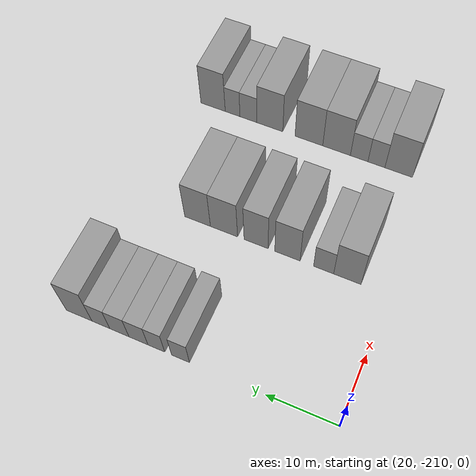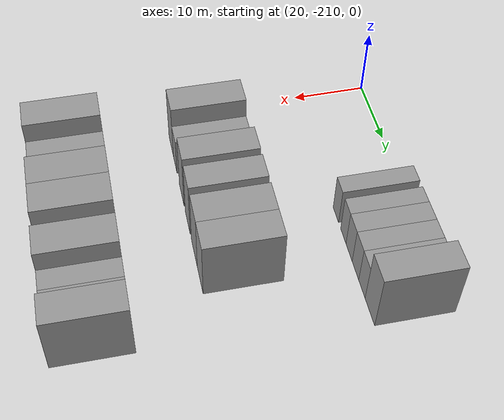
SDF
<sdf version="1.6">
 <world name="default">
  <model name="building_7">
   <static>1</static>
   <pose>25.0000 -188.0401 0 0.000000 0.000000 0.000000</pose>
   <link name="link">
    <pose>0 0 3.00 0 0 0</pose>
    <collision name="collision"><geometry><box><size>10.0000 2.5634 6.0000</size></box></geometry></collision>
    <visual name="visual">
     <cast_shadows>0</cast_shadows>
     <geometry><box><size>10.0000 2.5634 6.0000</size></box></geometry>
     <material>
      <script>
       <uri>model://grey_wall/materials/scripts</uri>
       <uri>model://grey_wall/materials/textures</uri>
       <name>vrc/grey_wall</name>
      </script>
     </material>
    </visual>
   </link>
  </model>
  <model name="building_8">
   <static>1</static>
   <pose>25.0000 -184.5320 0 0.000000 0.000000 0.000000</pose>
   <link name="link">
    <pose>0 0 3.00 0 0 0</pose>
    <collision name="collision"><geometry><box><size>10.0000 2.4528 6.0000</size></box></geometry></collision>
    <visual name="visual">
     <cast_shadows>0</cast_shadows>
     <geometry><box><size>10.0000 2.4528 6.0000</size></box></geometry>
     <material>
      <script>
       <uri>model://grey_wall/materials/scripts</uri>
       <uri>model://grey_wall/materials/textures</uri>
       <name>vrc/grey_wall</name>
      </script>
     </material>
    </visual>
   </link>
  </model>
  <model name="building_9">
   <static>1</static>
   <pose>25.0000 -181.9103 0 0.000000 0.000000 0.000000</pose>
   <link name="link">
    <pose>0 0 3.00 0 0 0</pose>
    <collision name="collision"><geometry><box><size>10.0000 2.7905 6.0000</size></box></geometry></collision>
    <visual name="visual">
     <cast_shadows>0</cast_shadows>
     <geometry><box><size>10.0000 2.7905 6.0000</size></box></geometry>
     <material>
      <script>
       <uri>model://grey_wall/materials/scripts</uri>
       <uri>model://grey_wall/materials/textures</uri>
       <name>vrc/grey_wall</name>
      </script>
     </material>
    </visual>
   </link>
  </model>
  <model name="building_10">
   <static>1</static>
   <pose>25.0000 -179.0946 0 0.000000 0.000000 0.000000</pose>
   <link name="link">
    <pose>0 0 3.00 0 0 0</pose>
    <collision name="collision"><geometry><box><size>10.0000 2.8409 6.0000</size></box></geometry></collision>
    <visual name="visual">
     <cast_shadows>0</cast_shadows>
     <geometry><box><size>10.0000 2.8409 6.0000</size></box></geometry>
     <material>
      <script>
       <uri>model://grey_wall/materials/scripts</uri>
       <uri>model://grey_wall/materials/textures</uri>
       <name>vrc/grey_wall</name>
      </script>
     </material>
    </visual>
   </link>
  </model>
  <model name="building_11">
   <static>1</static>
   <pose>25.0000 -176.3258 0 0.000000 0.000000 0.000000</pose>
   <link name="link">
    <pose>0 0 3.00 0 0 0</pose>
    <collision name="collision"><geometry><box><size>10.0000 2.6966 6.0000</size></box></geometry></collision>
    <visual name="visual">
     <cast_shadows>0</cast_shadows>
     <geometry><box><size>10.0000 2.6966 6.0000</size></box></geometry>
     <material>
      <script>
       <uri>model://grey_wall/materials/scripts</uri>
       <uri>model://grey_wall/materials/textures</uri>
       <name>vrc/grey_wall</name>
      </script>
     </material>
    </visual>
   </link>
  </model>
  <model name="building_12">
   <static>1</static>
   <pose>25.0000 -173.0287 0 0.000000 0.000000 0.000000</pose>
   <link name="link">
    <pose>0 0 4.50 0 0 0</pose>
    <collision name="collision"><geometry><box><size>10.0000 3.8977 9.0000</size></box></geometry></collision>
    <visual name="visual">
     <cast_shadows>0</cast_shadows>
     <geometry><box><size>10.0000 3.8977 9.0000</size></box></geometry>
     <material>
      <script>
       <uri>model://grey_wall/materials/scripts</uri>
       <uri>model://grey_wall/materials/textures</uri>
       <name>vrc/grey_wall</name>
      </script>
     </material>
    </visual>
   </link>
  </model>
  <model name="building_119">
   <static>1</static>
   <pose>44.0000 -204.0192 0 0.000000 0.000000 0.000000</pose>
   <link name="link">
    <pose>0 0 4.50 0 0 0</pose>
    <collision name="collision"><geometry><box><size>10.0000 3.9751 9.0000</size></box></geometry></collision>
    <visual name="visual">
     <cast_shadows>0</cast_shadows>
     <geometry><box><size>10.0000 3.9751 9.0000</size></box></geometry>
     <material>
      <script>
       <uri>model://grey_wall/materials/scripts</uri>
       <uri>model://grey_wall/materials/textures</uri>
       <name>vrc/grey_wall</name>
      </script>
     </material>
    </visual>
   </link>
  </model>
  <model name="building_120">
   <static>1</static>
   <pose>44.0000 -200.5597 0 0.000000 0.000000 0.000000</pose>
   <link name="link">
    <pose>0 0 3.00 0 0 0</pose>
    <collision name="collision"><geometry><box><size>10.0000 2.9437 6.0000</size></box></geometry></collision>
    <visual name="visual">
     <cast_shadows>0</cast_shadows>
     <geometry><box><size>10.0000 2.9437 6.0000</size></box></geometry>
     <material>
      <script>
       <uri>model://grey_wall/materials/scripts</uri>
       <uri>model://grey_wall/materials/textures</uri>
       <name>vrc/grey_wall</name>
      </script>
     </material>
    </visual>
   </link>
  </model>
  <model name="building_121">
   <static>1</static>
   <pose>44.0000 -195.1911 0 0.000000 0.000000 0.000000</pose>
   <link name="link">
    <pose>0 0 4.50 0 0 0</pose>
    <collision name="collision"><geometry><box><size>10.0000 3.7935 9.0000</size></box></geometry></collision>
    <visual name="visual">
     <cast_shadows>0</cast_shadows>
     <geometry><box><size>10.0000 3.7935 9.0000</size></box></geometry>
     <material>
      <script>
       <uri>model://grey_wall/materials/scripts</uri>
       <uri>model://grey_wall/materials/textures</uri>
       <name>vrc/grey_wall</name>
      </script>
     </material>
    </visual>
   </link>
  </model>
  <model name="building_122">
   <static>1</static>
   <pose>44.0000 -190.4630 0 0.000000 0.000000 0.000000</pose>
   <link name="link">
    <pose>0 0 4.50 0 0 0</pose>
    <collision name="collision"><geometry><box><size>10.0000 3.6627 9.0000</size></box></geometry></collision>
    <visual name="visual">
     <cast_shadows>0</cast_shadows>
     <geometry><box><size>10.0000 3.6627 9.0000</size></box></geometry>
     <material>
      <script>
       <uri>model://grey_wall/materials/scripts</uri>
       <uri>model://grey_wall/materials/textures</uri>
       <name>vrc/grey_wall</name>
      </script>
     </material>
    </visual>
   </link>
  </model>
  <model name="building_123">
   <static>1</static>
   <pose>44.0000 -185.5292 0 0.000000 0.000000 0.000000</pose>
   <link name="link">
    <pose>0 0 4.50 0 0 0</pose>
    <collision name="collision"><geometry><box><size>10.0000 4.2049 9.0000</size></box></geometry></collision>
    <visual name="visual">
     <cast_shadows>0</cast_shadows>
     <geometry><box><size>10.0000 4.2049 9.0000</size></box></geometry>
     <material>
      <script>
       <uri>model://grey_wall/materials/scripts</uri>
       <uri>model://grey_wall/materials/textures</uri>
       <name>vrc/grey_wall</name>
      </script>
     </material>
    </visual>
   </link>
  </model>
  <model name="building_124">
   <static>1</static>
   <pose>44.0000 -181.4076 0 0.000000 0.000000 0.000000</pose>
   <link name="link">
    <pose>0 0 4.50 0 0 0</pose>
    <collision name="collision"><geometry><box><size>10.0000 4.0384 9.0000</size></box></geometry></collision>
    <visual name="visual">
     <cast_shadows>0</cast_shadows>
     <geometry><box><size>10.0000 4.0384 9.0000</size></box></geometry>
     <material>
      <script>
       <uri>model://grey_wall/materials/scripts</uri>
       <uri>model://grey_wall/materials/textures</uri>
       <name>vrc/grey_wall</name>
      </script>
     </material>
    </visual>
   </link>
  </model>
  <model name="building_225">
   <static>1</static>
   <pose>63.0000 -205.1151 0 0.000000 0.000000 0.000000</pose>
   <link name="link">
    <pose>0 0 4.50 0 0 0</pose>
    <collision name="collision"><geometry><box><size>10.0000 4.2548 9.0000</size></box></geometry></collision>
    <visual name="visual">
     <cast_shadows>0</cast_shadows>
     <geometry><box><size>10.0000 4.2548 9.0000</size></box></geometry>
     <material>
      <script>
       <uri>model://grey_wall/materials/scripts</uri>
       <uri>model://grey_wall/materials/textures</uri>
       <name>vrc/grey_wall</name>
      </script>
     </material>
    </visual>
   </link>
  </model>
  <model name="building_226">
   <static>1</static>
   <pose>63.0000 -201.6613 0 0.000000 0.000000 0.000000</pose>
   <link name="link">
    <pose>0 0 3.00 0 0 0</pose>
    <collision name="collision"><geometry><box><size>10.0000 2.6529 6.0000</size></box></geometry></collision>
    <visual name="visual">
     <cast_shadows>0</cast_shadows>
     <geometry><box><size>10.0000 2.6529 6.0000</size></box></geometry>
     <material>
      <script>
       <uri>model://grey_wall/materials/scripts</uri>
       <uri>model://grey_wall/materials/textures</uri>
       <name>vrc/grey_wall</name>
      </script>
     </material>
    </visual>
   </link>
  </model>
  <model name="building_227">
   <static>1</static>
   <pose>63.0000 -198.9541 0 0.000000 0.000000 0.000000</pose>
   <link name="link">
    <pose>0 0 3.00 0 0 0</pose>
    <collision name="collision"><geometry><box><size>10.0000 2.7616 6.0000</size></box></geometry></collision>
    <visual name="visual">
     <cast_shadows>0</cast_shadows>
     <geometry><box><size>10.0000 2.7616 6.0000</size></box></geometry>
     <material>
      <script>
       <uri>model://grey_wall/materials/scripts</uri>
       <uri>model://grey_wall/materials/textures</uri>
       <name>vrc/grey_wall</name>
      </script>
     </material>
    </visual>
   </link>
  </model>
  <model name="building_228">
   <static>1</static>
   <pose>63.0000 -195.3633 0 0.000000 0.000000 0.000000</pose>
   <link name="link">
    <pose>0 0 4.50 0 0 0</pose>
    <collision name="collision"><geometry><box><size>10.0000 4.4200 9.0000</size></box></geometry></collision>
    <visual name="visual">
     <cast_shadows>0</cast_shadows>
     <geometry><box><size>10.0000 4.4200 9.0000</size></box></geometry>
     <material>
      <script>
       <uri>model://grey_wall/materials/scripts</uri>
       <uri>model://grey_wall/materials/textures</uri>
       <name>vrc/grey_wall</name>
      </script>
     </material>
    </visual>
   </link>
  </model>
  <model name="building_229">
   <static>1</static>
   <pose>63.0000 -190.9120 0 0.000000 0.000000 0.000000</pose>
   <link name="link">
    <pose>0 0 4.50 0 0 0</pose>
    <collision name="collision"><geometry><box><size>10.0000 4.4825 9.0000</size></box></geometry></collision>
    <visual name="visual">
     <cast_shadows>0</cast_shadows>
     <geometry><box><size>10.0000 4.4825 9.0000</size></box></geometry>
     <material>
      <script>
       <uri>model://grey_wall/materials/scripts</uri>
       <uri>model://grey_wall/materials/textures</uri>
       <name>vrc/grey_wall</name>
      </script>
     </material>
    </visual>
   </link>
  </model>
  <model name="building_230">
   <static>1</static>
   <pose>63.0000 -184.5253 0 0.000000 0.000000 0.000000</pose>
   <link name="link">
    <pose>0 0 4.50 0 0 0</pose>
    <collision name="collision"><geometry><box><size>10.0000 4.2908 9.0000</size></box></geometry></collision>
    <visual name="visual">
     <cast_shadows>0</cast_shadows>
     <geometry><box><size>10.0000 4.2908 9.0000</size></box></geometry>
     <material>
      <script>
       <uri>model://grey_wall/materials/scripts</uri>
       <uri>model://grey_wall/materials/textures</uri>
       <name>vrc/grey_wall</name>
      </script>
     </material>
    </visual>
   </link>
  </model>
  <model name="building_231">
   <static>1</static>
   <pose>63.0000 -180.9645 0 0.000000 0.000000 0.000000</pose>
   <link name="link">
    <pose>0 0 3.00 0 0 0</pose>
    <collision name="collision"><geometry><box><size>10.0000 2.8308 6.0000</size></box></geometry></collision>
    <visual name="visual">
     <cast_shadows>0</cast_shadows>
     <geometry><box><size>10.0000 2.8308 6.0000</size></box></geometry>
     <material>
      <script>
       <uri>model://grey_wall/materials/scripts</uri>
       <uri>model://grey_wall/materials/textures</uri>
       <name>vrc/grey_wall</name>
      </script>
     </material>
    </visual>
   </link>
  </model>
  <model name="building_232">
   <static>1</static>
   <pose>63.0000 -178.3096 0 0.000000 0.000000 0.000000</pose>
   <link name="link">
    <pose>0 0 3.00 0 0 0</pose>
    <collision name="collision"><geometry><box><size>10.0000 2.4792 6.0000</size></box></geometry></collision>
    <visual name="visual">
     <cast_shadows>0</cast_shadows>
     <geometry><box><size>10.0000 2.4792 6.0000</size></box></geometry>
     <material>
      <script>
       <uri>model://grey_wall/materials/scripts</uri>
       <uri>model://grey_wall/materials/textures</uri>
       <name>vrc/grey_wall</name>
      </script>
     </material>
    </visual>
   </link>
  </model>
  <model name="building_233">
   <static>1</static>
   <pose>63.0000 -175.0000 0 0.000000 0.000000 0.000000</pose>
   <link name="link">
    <pose>0 0 4.50 0 0 0</pose>
    <collision name="collision"><geometry><box><size>10.0000 4.1399 9.0000</size></box></geometry></collision>
    <visual name="visual">
     <cast_shadows>0</cast_shadows>
     <geometry><box><size>10.0000 4.1399 9.0000</size></box></geometry>
     <material>
      <script>
       <uri>model://grey_wall/materials/scripts</uri>
       <uri>model://grey_wall/materials/textures</uri>
       <name>vrc/grey_wall</name>
      </script>
     </material>
    </visual>
   </link>
  </model>
 </world>
</sdf>
